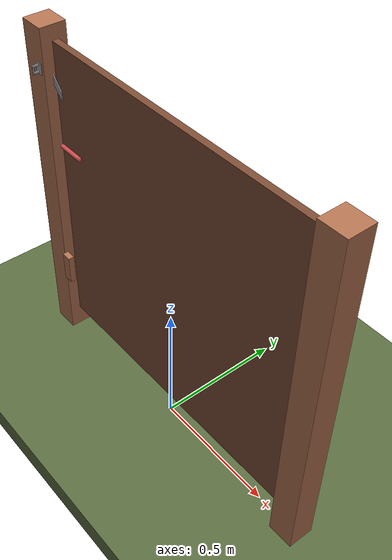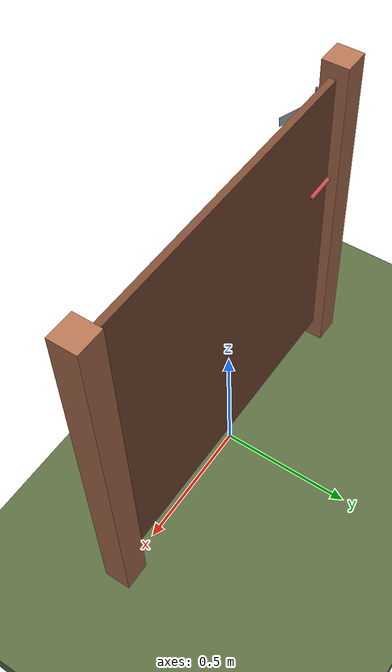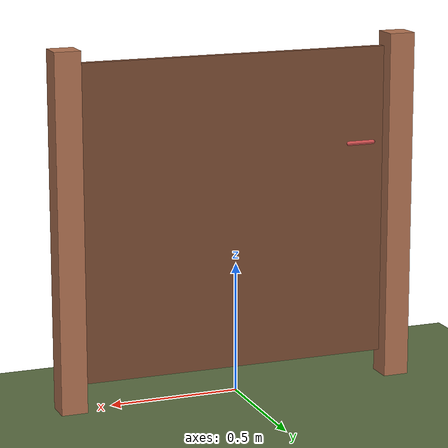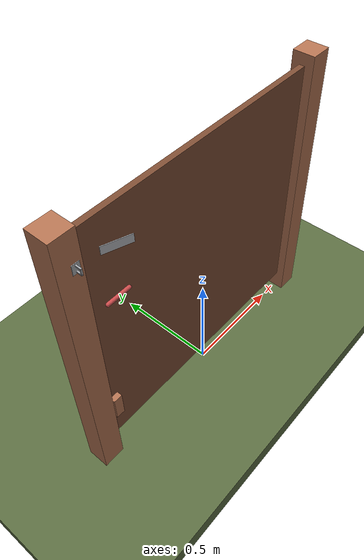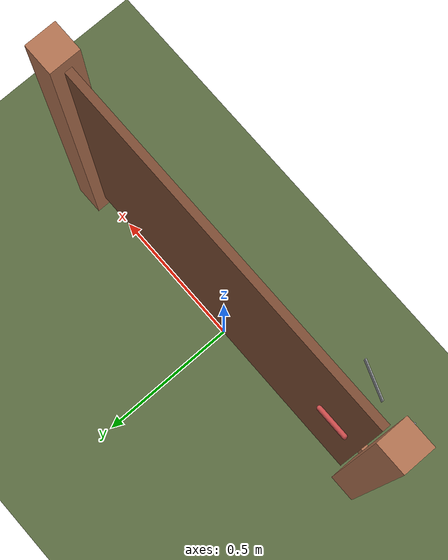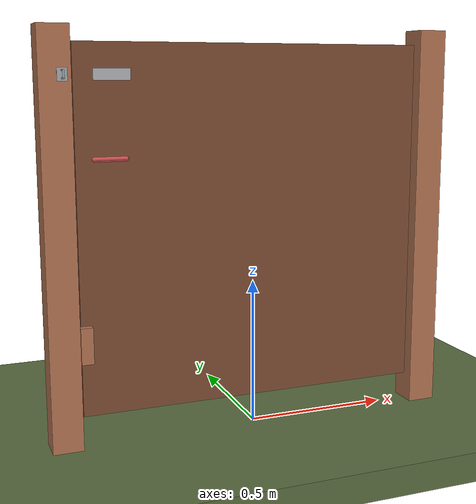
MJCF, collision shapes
<?xml version="1.0" ?>
<mujoco model="db0098_gate_swing_minimal">
  <compiler angle="radian" meshdir="../../hardware" texturedir="../../textures" autolimits="true" inertiafromgeom="false"/>
  <option timestep="0.002" integrator="implicitfast" cone="elliptic" impratio="10" noslip_iterations="3">
    <flag multiccd="enable"/>
  </option>
  <size memory="16M"/>
  <default>
    <geom condim="4" solref="0.005 1" solimp="0.95 0.99 0.001"/>
    <joint solreflimit="0.005 1" solimplimit="0.95 0.99 0.001"/>
    <tendon solreflimit="0.005 1"/>
    <equality solref="0.002 1"/>
  </default>
  <visual>
    <headlight ambient="0.4 0.4 0.4" diffuse="0.7 0.7 0.7" specular="0.2 0.2 0.2"/>
    <quality shadowsize="4096"/>
    <map znear="0.01" zfar="60"/>
  </visual>
  <asset>
    <mesh name="ring_cc5c941a8a" file="ring_cc5c941a8a.obj"/>
    <material name="mat_floor" rgba="0.35 0.42 0.25 1" specular="0.2" shininess="0.15" reflectance="0"/>
    <material name="mat_wall" rgba="0.78 0.76 0.7 1" specular="0.2" shininess="0.1" reflectance="0"/>
    <material name="mat_leaf" rgba="0.485 0.296 0.2 1" specular="0.2" shininess="0.4" reflectance="0"/>
    <material name="mat_leaf_brace" rgba="0.436 0.267 0.18 1" specular="0.2" shininess="0.2" reflectance="0"/>
    <material name="mat_hinge" rgba="0.65 0.66 0.68 1" specular="0.74" shininess="0.5" reflectance="0.36"/>
    <material name="mat_op_wrought_iron" rgba="0.08 0.08 0.09 1" specular="0.56" shininess="0.25" reflectance="0.24"/>
    <material name="mat_op_steel_galvanized" rgba="0.65 0.66 0.68 1" specular="0.74" shininess="0.5" reflectance="0.36"/>
    <material name="mat_padlock" rgba="0.85 0.66 0.3 1" specular="0.8" shininess="0.75" reflectance="0.4"/>
    <material name="mat_frame" rgba="0.7 0.45 0.32 1" specular="0.2" shininess="0.4" reflectance="0"/>
    <material name="mat_fence" rgba="0.7 0.45 0.32 1" specular="0.2" shininess="0.4" reflectance="0"/>
    <texture name="skybox" type="skybox" builtin="gradient" rgb1="0.6 0.7 0.85" rgb2="0.9 0.92 0.95" width="256" height="256"/>
  </asset>
  <worldbody>
    <light name="sun" pos="1.5 -2.5 4" dir="-0.3 0.5 -0.8" directional="true" diffuse="0.8 0.8 0.8" specular="0.3 0.3 0.3" castshadow="true"/>
    <light name="fill" pos="-1.5 2.5 3" dir="0.3 -0.5 -0.7" directional="true" diffuse="0.35 0.35 0.4" castshadow="false"/>
    <camera name="robot_view" pos="0 -1.875 1.135" xyaxes="1 0 0 0 0.26963 0.962964" fovy="52"/>
    <camera name="far_view" pos="0 1.875 1.135" xyaxes="-1 0 0 0 -0.26963 0.962964" fovy="52"/>
    <camera name="iso" pos="-1.425 -1.575 1.435" xyaxes="0.741536 -0.670913 0 0.242917 0.268487 0.932151" fovy="46"/>
    <camera name="detail_handle" pos="-0.312 -0.8445 1.22" xyaxes="0.97561 0.219512 0 -0.070934 0.315262 0.94635" fovy="38"/>
    <geom name="floor" type="box" size="6 6 0.05" pos="0 0 -0.05" material="mat_floor" group="0" contype="1" conaffinity="1" friction="0.8 0.005 0.0001" density="2400"/>
    <geom name="leaf_staple_leg_n" type="box" size="0.003 0.0025 0.013" pos="-0.634 -0.063 1.2125" quat="0 0 -0.707107 0.707107" material="mat_op_steel_galvanized" group="0" contype="1" conaffinity="1" friction="0.6 0.005 0.0001" density="7800"/>
    <geom name="leaf_staple_leg_p" type="box" size="0.003 0.0025 0.013" pos="-0.634 -0.063 1.1875" quat="0 0 -0.707107 0.707107" material="mat_op_steel_galvanized" group="0" contype="1" conaffinity="1" friction="0.6 0.005 0.0001" density="7800"/>
    <geom name="leaf_staple_bridge" type="box" size="0.003 0.015 0.0025" pos="-0.634 -0.0735 1.2" quat="0 0 -0.707107 0.707107" material="mat_op_steel_galvanized" group="0" contype="1" conaffinity="1" friction="0.6 0.005 0.0001" density="7800"/>
    <geom name="leaf_staple_base" type="box" size="0.016 0.021 0.001" pos="-0.634 -0.051 1.2" quat="0 0 -0.707107 0.707107" material="mat_op_steel_galvanized" group="1" contype="0" conaffinity="0" density="7800"/>
    <geom name="post_hinge" type="box" size="0.05 0.05 0.675" pos="0.656 0 0.675" material="mat_frame" group="0" contype="1" conaffinity="1" friction="0.6 0.005 0.0001" density="350"/>
    <geom name="post_latch" type="box" size="0.05 0.05 0.675" pos="-0.656 0 0.675" material="mat_frame" group="0" contype="1" conaffinity="1" friction="0.6 0.005 0.0001" density="350"/>
    <geom name="gate_stop" type="box" size="0.02 0.012 0.06" pos="-0.586 -0.0465 0.35" material="mat_frame" group="0" contype="1" conaffinity="1" friction="0.6 0.005 0.0001" density="350"/>
    <site name="approach_point" pos="0 -1.5 0" quat="1 0 0 0" size="0.05" rgba="0.2 0.9 0.2 0.5" group="4"/>
    <site name="goal_point" pos="0 1.5 0" quat="1 0 0 0" size="0.05" rgba="0.2 0.9 0.2 0.5" group="4"/>
    <site name="door_plane_center" pos="0 0 0.61" quat="1 0 0 0" size="0.02" rgba="0.2 0.9 0.2 0.5" group="4"/>
    <body name="leaf" pos="0.606 0 0">
      <inertial pos="-0.62861 0 0.714918" mass="14.53516" quat="0.682359 0.682711 0.184824 -0.184749" diaginertia="1.657851329 1.891516935 3.544435788"/>
      <joint name="leaf_hinge" type="hinge" axis="0 0 -1" pos="-0.003 0.05 0" limited="true" range="0 1.396263" damping="1.449391" frictionloss="0.986133" stiffness="5" springref="-0.8" armature="0.02"/>
      <geom name="leaf_slab" type="box" size="0.6 0.0125 0.6" pos="-0.603 0 0.7" material="mat_leaf" group="0" contype="1" conaffinity="1" friction="0.35 0.005 0.0001" density="1"/>
      <geom name="leaf_ring_pull_n" type="mesh" mesh="ring_cc5c941a8a" pos="-1.098 -0.0125 1" quat="0 0 -0.707107 0.707107" material="mat_op_wrought_iron" group="1" contype="0" conaffinity="0" density="3000"/>
      <geom name="leaf_ring_pull_col_n" type="capsule" size="0.008 0.05" pos="-1.098 -0.0445 0.94" quat="0.707107 0 0.707107 0" material="mat_op_wrought_iron" group="3" contype="1" conaffinity="1" rgba="0.8 0.3 0.3 0.25" friction="0.7 0.01 0.0001" density="3000"/>
      <geom name="leaf_ring_pull_p" type="mesh" mesh="ring_cc5c941a8a" pos="-1.098 0.0125 1" quat="0 0 0.707107 0.707107" material="mat_op_wrought_iron" group="1" contype="0" conaffinity="0" density="3000"/>
      <geom name="leaf_ring_pull_col_p" type="capsule" size="0.008 0.05" pos="-1.098 0.0445 0.94" quat="0.707107 0 0.707107 0" material="mat_op_wrought_iron" group="3" contype="1" conaffinity="1" rgba="0.8 0.3 0.3 0.25" friction="0.7 0.01 0.0001" density="3000"/>
      <site name="leaf_ring_pull_grip_n" pos="-1.098 -0.0445 0.94" quat="1 0 0 0" size="0.012" rgba="0.2 0.9 0.2 0.5" group="4"/>
      <site name="leaf_ring_pull_grip_p" pos="-1.098 0.0445 0.94" quat="1 0 0 0" size="0.012" rgba="0.2 0.9 0.2 0.5" group="4"/>
      <site name="leaf_edge_mid" pos="-1.203 0 0.6" quat="1 0 0 0" size="0.02" rgba="0.2 0.9 0.2 0.5" group="4"/>
      <body name="leaf_hasp" pos="-1.148 -0.054 1.2">
        <inertial pos="0.054209 -0.017681 0" mass="0.093366" quat="0.696818 0.696818 -0.120185 -0.120185" diaginertia="0.000009601 0.000101185 0.000110646"/>
        <joint name="leaf_hasp_hinge" type="hinge" axis="0 0 1" limited="true" range="0 2.9" damping="0.02" frictionloss="0.05" armature="0.005" ref="2.8"/>
        <geom name="leaf_hasp_strap" type="box" size="0.057 0.0175 0.0015" pos="0.054209 -0.017681 0" quat="-0.696818 0.696818 -0.120185 0.120185" material="mat_op_steel_galvanized" group="0" contype="1" conaffinity="1" friction="0.6 0.005 0.0001" density="7800"/>
        <site name="leaf_hasp_grip" pos="0.091919 -0.022067 0" quat="0.169967 0 0 0.98545" size="0.01" rgba="0.2 0.9 0.2 0.5" group="4"/>
      </body>
    </body>
  </worldbody>
  <sensor>
    <jointpos name="leaf_hinge_pos" joint="leaf_hinge"/>
    <jointvel name="leaf_hinge_vel" joint="leaf_hinge"/>
    <jointpos name="leaf_hasp_hinge_pos" joint="leaf_hasp_hinge"/>
    <jointvel name="leaf_hasp_hinge_vel" joint="leaf_hasp_hinge"/>
  </sensor>
</mujoco>
